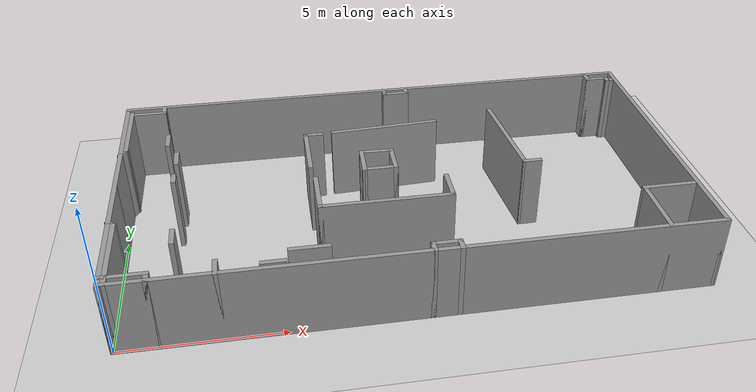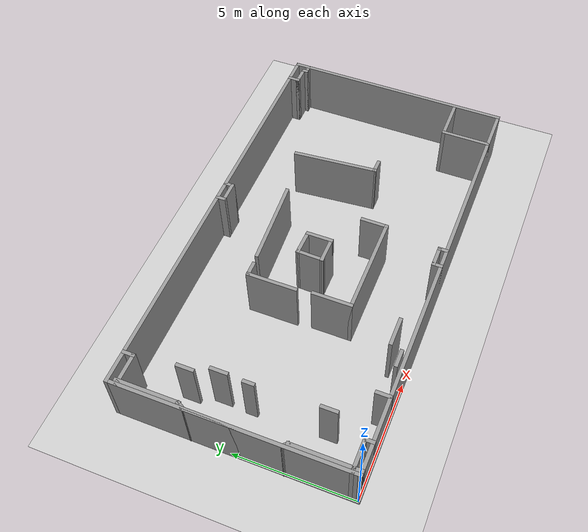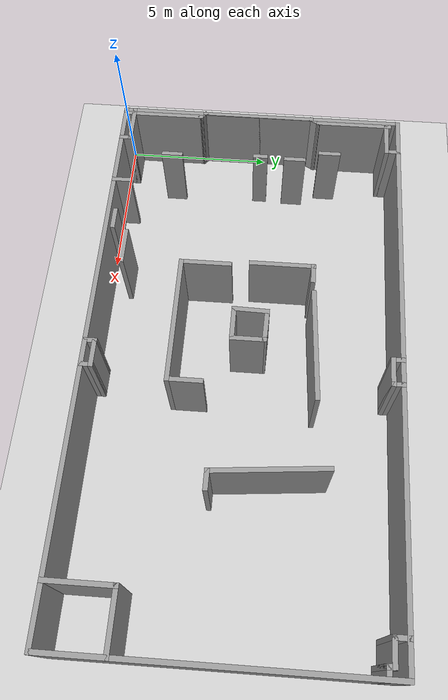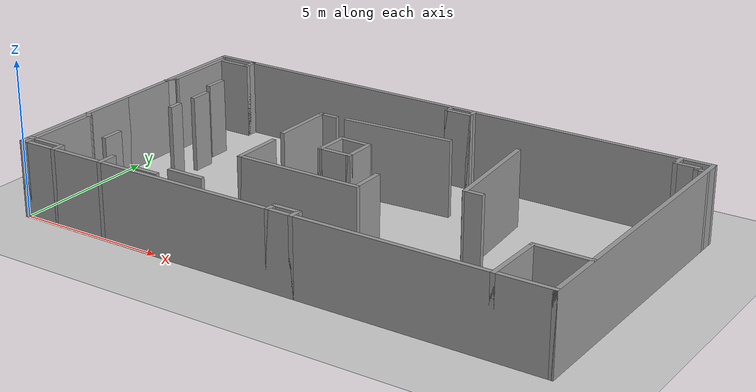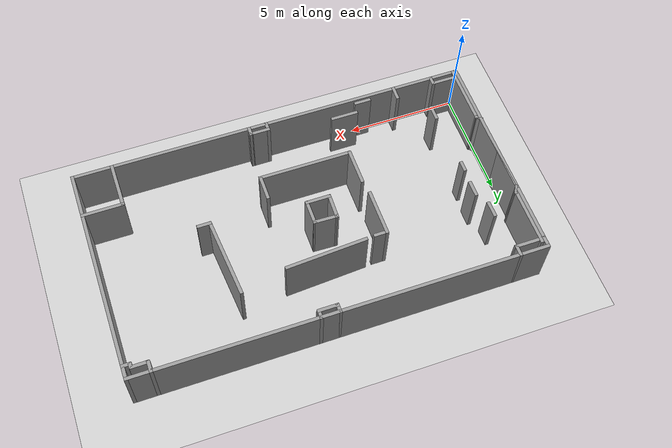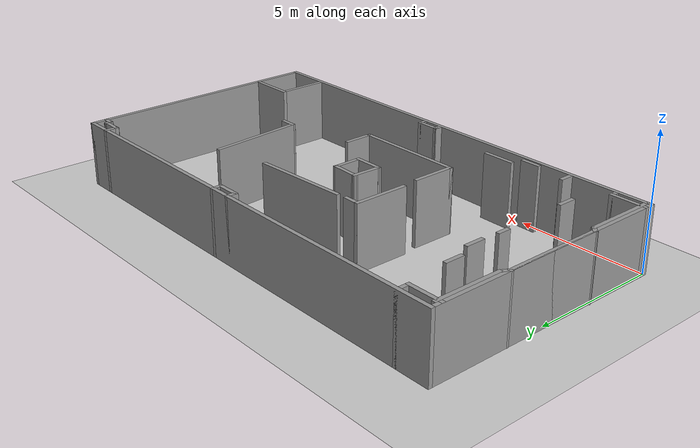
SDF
<sdf version="1.7">
 <world name="default">
  <light name="sun" type="directional">
   <pose>0 0 10 0 -0 0</pose>
   <diffuse>0.8 0.8 0.8 1</diffuse>
   <specular>0.2 0.2 0.2 1</specular>
   <attenuation>
    <range>1000</range>
    <constant>0.9</constant>
    <linear>0.01</linear>
    <quadratic>0.001</quadratic>
   </attenuation>
   <direction>-0.5 0.1 -0.9</direction>
   <spot><inner_angle>0</inner_angle><outer_angle>0</outer_angle><falloff>0</falloff></spot>
  </light>
  <model name="ground_plane">
   <static>1</static>
   <link name="link">
    <collision name="collision">
     <geometry><plane><normal>0 0 1</normal><size>100 100</size></plane></geometry>
     <surface>
      <contact><collide_bitmask>65535</collide_bitmask></contact>
      <friction><ode><mu>100</mu><mu2>50</mu2></ode></friction>
     </surface>
    </collision>
    <visual name="visual">
     <cast_shadows>0</cast_shadows>
     <geometry><plane><normal>0 0 1</normal><size>100 100</size></plane></geometry>
     <material>
      <script><uri>file://media/materials/scripts/gazebo.material</uri><name>Gazebo/Grey</name></script>
     </material>
    </visual>
   </link>
  </model>
  <gravity>0 0 -9.8</gravity>
  <magnetic_field>6e-06 2.3e-05 -4.2e-05</magnetic_field>
  <atmosphere type="adiabatic"/>
  <physics type="ode">
   <max_step_size>0.001</max_step_size>
   <real_time_factor>1</real_time_factor>
   <real_time_update_rate>1000</real_time_update_rate>
  </physics>
  <scene><ambient>0.4 0.4 0.4 1</ambient><background>0.7 0.7 0.7 1</background><shadows>1</shadows></scene>
  <spherical_coordinates>
   <surface_model>EARTH_WGS84</surface_model>
   <latitude_deg>0</latitude_deg>
   <longitude_deg>0</longitude_deg>
   <elevation>0</elevation>
   <heading_deg>0</heading_deg>
  </spherical_coordinates>
  <model name="testbed_3">
   <pose>8.98447 4.85 0 0 -0 0</pose>
   <link name="Wall_0">
    <collision name="Wall_0_Collision">
     <geometry><box><size>18.15 0.15 2.5</size></box></geometry>
     <pose>0 0 1.25 0 -0 0</pose>
    </collision>
    <visual name="Wall_0_Visual">
     <pose>0 0 1.25 0 -0 0</pose>
     <geometry><box><size>18.15 0.15 2.5</size></box></geometry>
     <material>
      <script><uri>file://media/materials/scripts/gazebo.material</uri><name>Gazebo/Grey</name></script>
      <ambient>1 1 1 1</ambient>
     </material>
     <meta><layer>0</layer></meta>
    </visual>
    <pose>0.015533 -4.85 0 0 -0 0</pose>
   </link>
   <link name="Wall_10">
    <collision name="Wall_10_Collision">
     <geometry><box><size>2.15 0.15 2.5</size></box></geometry>
     <pose>0 0 1.25 0 -0 0</pose>
    </collision>
    <visual name="Wall_10_Visual">
     <pose>0 0 1.25 0 -0 0</pose>
     <geometry><box><size>2.15 0.15 2.5</size></box></geometry>
     <material>
      <script><uri>file://media/materials/scripts/gazebo.material</uri><name>Gazebo/Grey</name></script>
      <ambient>1 1 1 1</ambient>
     </material>
     <meta><layer>0</layer></meta>
    </visual>
    <pose>7.26553 -3.85 0 0 -0 -1.5708</pose>
   </link>
   <link name="Wall_12">
    <collision name="Wall_12_Collision">
     <geometry><box><size>0.45 0.15 2.5</size></box></geometry>
     <pose>0 0 1.25 0 -0 0</pose>
    </collision>
    <visual name="Wall_12_Visual">
     <pose>0 0 1.25 0 -0 0</pose>
     <geometry><box><size>0.45 0.15 2.5</size></box></geometry>
     <material>
      <script><uri>file://media/materials/scripts/gazebo.material</uri><name>Gazebo/Grey</name></script>
      <ambient>1 1 1 1</ambient>
     </material>
     <meta><layer>0</layer></meta>
    </visual>
    <pose>0.215532 -4.7 0 0 -0 1.5708</pose>
   </link>
   <link name="Wall_13">
    <collision name="Wall_13_Collision">
     <geometry><box><size>0.95 0.15 2.5</size></box></geometry>
     <pose>0 0 1.25 0 -0 0</pose>
    </collision>
    <visual name="Wall_13_Visual">
     <pose>0 0 1.25 0 -0 0</pose>
     <geometry><box><size>0.95 0.15 2.5</size></box></geometry>
     <material>
      <script><uri>file://media/materials/scripts/gazebo.material</uri><name>Gazebo/Grey</name></script>
      <ambient>1 1 1 1</ambient>
     </material>
     <meta><layer>0</layer></meta>
    </visual>
    <pose>0.615533 -4.55 0 0 -0 0</pose>
   </link>
   <link name="Wall_14">
    <collision name="Wall_14_Collision">
     <geometry><box><size>0.45 0.15 2.5</size></box></geometry>
     <pose>0 0 1.25 0 -0 0</pose>
    </collision>
    <visual name="Wall_14_Visual">
     <pose>0 0 1.25 0 -0 0</pose>
     <geometry><box><size>0.45 0.15 2.5</size></box></geometry>
     <material>
      <script><uri>file://media/materials/scripts/gazebo.material</uri><name>Gazebo/Grey</name></script>
      <ambient>1 1 1 1</ambient>
     </material>
     <meta><layer>0</layer></meta>
    </visual>
    <pose>1.01553 -4.7 0 0 -0 -1.5708</pose>
   </link>
   <link name="Wall_16">
    <collision name="Wall_16_Collision">
     <geometry><box><size>0.95 0.15 2.5</size></box></geometry>
     <pose>0 0 1.25 0 -0 0</pose>
    </collision>
    <visual name="Wall_16_Visual">
     <pose>0 0 1.25 0 -0 0</pose>
     <geometry><box><size>0.95 0.15 2.5</size></box></geometry>
     <material>
      <script><uri>file://media/materials/scripts/gazebo.material</uri><name>Gazebo/Grey</name></script>
      <ambient>1 1 1 1</ambient>
     </material>
     <meta><layer>0</layer></meta>
    </visual>
    <pose>0.615533 4.55 0 0 -0 0</pose>
   </link>
   <link name="Wall_178">
    <collision name="Wall_178_Collision">
     <geometry><box><size>1.41 0.15 2.5</size></box></geometry>
     <pose>0 0 1.25 0 -0 0</pose>
    </collision>
    <visual name="Wall_178_Visual">
     <pose>0 0 1.25 0 -0 0</pose>
     <geometry><box><size>1.41 0.15 2.5</size></box></geometry>
     <material>
      <script><uri>file://media/materials/scripts/gazebo.material</uri><name>Gazebo/Grey</name></script>
      <ambient>1 1 1 1</ambient>
     </material>
     <meta><layer>0</layer></meta>
    </visual>
    <pose>-8.35447 -4.55 0 0 -0 0</pose>
   </link>
   <link name="Wall_179">
    <collision name="Wall_179_Collision">
     <geometry><box><size>0.45 0.15 2.5</size></box></geometry>
     <pose>0 0 1.25 0 -0 0</pose>
    </collision>
    <visual name="Wall_179_Visual">
     <pose>0 0 1.25 0 -0 0</pose>
     <geometry><box><size>0.45 0.15 2.5</size></box></geometry>
     <material>
      <script><uri>file://media/materials/scripts/gazebo.material</uri><name>Gazebo/Grey</name></script>
      <ambient>1 1 1 1</ambient>
     </material>
     <meta><layer>0</layer></meta>
    </visual>
    <pose>-7.72447 -4.7 0 0 -0 -1.5708</pose>
   </link>
   <link name="Wall_18">
    <collision name="Wall_18_Collision">
     <geometry><box><size>0.45 0.15 2.5</size></box></geometry>
     <pose>0 0 1.25 0 -0 0</pose>
    </collision>
    <visual name="Wall_18_Visual">
     <pose>0 0 1.25 0 -0 0</pose>
     <geometry><box><size>0.45 0.15 2.5</size></box></geometry>
     <material>
      <script><uri>file://media/materials/scripts/gazebo.material</uri><name>Gazebo/Grey</name></script>
      <ambient>1 1 1 1</ambient>
     </material>
     <meta><layer>0</layer></meta>
    </visual>
    <pose>0.215532 4.7 0 0 -0 -1.5708</pose>
   </link>
   <link name="Wall_181">
    <collision name="Wall_181_Collision">
     <geometry><box><size>2.65 0.15 2.5</size></box></geometry>
     <pose>0 0 1.25 0 -0 0</pose>
    </collision>
    <visual name="Wall_181_Visual">
     <pose>0 0 1.25 0 -0 0</pose>
     <geometry><box><size>2.65 0.15 2.5</size></box></geometry>
     <material>
      <script><uri>file://media/materials/scripts/gazebo.material</uri><name>Gazebo/Grey</name></script>
      <ambient>1 1 1 1</ambient>
     </material>
     <meta><layer>0</layer></meta>
    </visual>
    <pose>-8.83447 3.3 0 0 -0 -1.5708</pose>
   </link>
   <link name="Wall_182">
    <collision name="Wall_182_Collision">
     <geometry><box><size>0.458869 0.15 2.5</size></box></geometry>
     <pose>0 0 1.25 0 -0 0</pose>
    </collision>
    <visual name="Wall_182_Visual">
     <pose>0 0 1.25 0 -0 0</pose>
     <geometry><box><size>0.458869 0.15 2.5</size></box></geometry>
     <material>
      <script><uri>file://media/materials/scripts/gazebo.material</uri><name>Gazebo/Grey</name></script>
      <ambient>1 1 1 1</ambient>
     </material>
     <meta><layer>0</layer></meta>
    </visual>
    <pose>-8.90947 1.915 0 0 -0 -2.07789</pose>
   </link>
   <link name="Wall_183">
    <collision name="Wall_183_Collision">
     <geometry><box><size>3.93 0.15 2.5</size></box></geometry>
     <pose>0 0 1.25 0 -0 0</pose>
    </collision>
    <visual name="Wall_183_Visual">
     <pose>0 0 1.25 0 -0 0</pose>
     <geometry><box><size>3.93 0.15 2.5</size></box></geometry>
     <material>
      <script><uri>file://media/materials/scripts/gazebo.material</uri><name>Gazebo/Grey</name></script>
      <ambient>1 1 1 1</ambient>
     </material>
     <meta><layer>0</layer></meta>
    </visual>
    <pose>-8.98447 -0.11 0 0 -0 -1.5708</pose>
   </link>
   <link name="Wall_184">
    <collision name="Wall_184_Collision">
     <geometry><box><size>0.362132 0.15 2.5</size></box></geometry>
     <pose>0 0 1.25 0 -0 0</pose>
    </collision>
    <visual name="Wall_184_Visual">
     <pose>0 0 1.25 0 -0 0</pose>
     <geometry><box><size>0.362132 0.15 2.5</size></box></geometry>
     <material>
      <script><uri>file://media/materials/scripts/gazebo.material</uri><name>Gazebo/Grey</name></script>
      <ambient>1 1 1 1</ambient>
     </material>
     <meta><layer>0</layer></meta>
    </visual>
    <pose>-8.90947 -2.075 0 0 -0 -0.785398</pose>
   </link>
   <link name="Wall_185">
    <collision name="Wall_185_Collision">
     <geometry><box><size>2.85 0.15 2.5</size></box></geometry>
     <pose>0 0 1.25 0 -0 0</pose>
    </collision>
    <visual name="Wall_185_Visual">
     <pose>0 0 1.25 0 -0 0</pose>
     <geometry><box><size>2.85 0.15 2.5</size></box></geometry>
     <material>
      <script><uri>file://media/materials/scripts/gazebo.material</uri><name>Gazebo/Grey</name></script>
      <ambient>1 1 1 1</ambient>
     </material>
     <meta><layer>0</layer></meta>
    </visual>
    <pose>-8.83447 -3.5 0 0 -0 -1.5708</pose>
   </link>
   <link name="Wall_187">
    <collision name="Wall_187_Collision">
     <geometry><box><size>0.72 0.15 2.5</size></box></geometry>
     <pose>0 0 1.25 0 -0 0</pose>
    </collision>
    <visual name="Wall_187_Visual">
     <pose>0 0 1.25 0 -0 0</pose>
     <geometry><box><size>0.72 0.15 2.5</size></box></geometry>
     <material>
      <script><uri>file://media/materials/scripts/gazebo.material</uri><name>Gazebo/Grey</name></script>
      <ambient>1 1 1 1</ambient>
     </material>
     <meta><layer>0</layer></meta>
    </visual>
    <pose>-7.11447 -2.995 0 0 -0 1.5708</pose>
   </link>
   <link name="Wall_189">
    <collision name="Wall_189_Collision">
     <geometry><box><size>0.77 0.15 2.5</size></box></geometry>
     <pose>0 0 1.25 0 -0 0</pose>
    </collision>
    <visual name="Wall_189_Visual">
     <pose>0 0 1.25 0 -0 0</pose>
     <geometry><box><size>0.77 0.15 2.5</size></box></geometry>
     <material>
      <script><uri>file://media/materials/scripts/gazebo.material</uri><name>Gazebo/Grey</name></script>
      <ambient>1 1 1 1</ambient>
     </material>
     <meta><layer>0</layer></meta>
    </visual>
    <pose>-4.29447 -4.62 0 0 -0 3.14159</pose>
   </link>
   <link name="Wall_2">
    <collision name="Wall_2_Collision">
     <geometry><box><size>9.85 0.15 2.5</size></box></geometry>
     <pose>0 0 1.25 0 -0 0</pose>
    </collision>
    <visual name="Wall_2_Visual">
     <pose>0 0 1.25 0 -0 0</pose>
     <geometry><box><size>9.85 0.15 2.5</size></box></geometry>
     <material>
      <script><uri>file://media/materials/scripts/gazebo.material</uri><name>Gazebo/Grey</name></script>
      <ambient>1 1 1 1</ambient>
     </material>
     <meta><layer>0</layer></meta>
    </visual>
    <pose>9.01553 0 0 0 -0 1.5708</pose>
   </link>
   <link name="Wall_20">
    <collision name="Wall_20_Collision">
     <geometry><box><size>0.45 0.15 2.5</size></box></geometry>
     <pose>0 0 1.25 0 -0 0</pose>
    </collision>
    <visual name="Wall_20_Visual">
     <pose>0 0 1.25 0 -0 0</pose>
     <geometry><box><size>0.45 0.15 2.5</size></box></geometry>
     <material>
      <script><uri>file://media/materials/scripts/gazebo.material</uri><name>Gazebo/Grey</name></script>
      <ambient>1 1 1 1</ambient>
     </material>
     <meta><layer>0</layer></meta>
    </visual>
    <pose>1.01553 4.7 0 0 -0 1.5708</pose>
   </link>
   <link name="Wall_22">
    <collision name="Wall_22_Collision">
     <geometry><box><size>4.25 0.15 2.5</size></box></geometry>
     <pose>0 0 1.25 0 -0 0</pose>
    </collision>
    <visual name="Wall_22_Visual">
     <pose>0 0 1.25 0 -0 0</pose>
     <geometry><box><size>4.25 0.15 2.5</size></box></geometry>
     <material>
      <script><uri>file://media/materials/scripts/gazebo.material</uri><name>Gazebo/Grey</name></script>
      <ambient>1 1 1 1</ambient>
     </material>
     <meta><layer>0</layer></meta>
    </visual>
    <pose>-0.734467 -2.21 0 0 -0 0</pose>
   </link>
   <link name="Wall_29">
    <collision name="Wall_29_Collision">
     <geometry><box><size>1.12 0.15 2.5</size></box></geometry>
     <pose>0 0 1.25 0 -0 0</pose>
    </collision>
    <visual name="Wall_29_Visual">
     <pose>0 0 1.25 0 -0 0</pose>
     <geometry><box><size>1.12 0.15 2.5</size></box></geometry>
     <material>
      <script><uri>file://media/materials/scripts/gazebo.material</uri><name>Gazebo/Grey</name></script>
      <ambient>1 1 1 1</ambient>
     </material>
     <meta><layer>0</layer></meta>
    </visual>
    <pose>1.31553 -1.665 0 0 -0 1.5708</pose>
   </link>
   <link name="Wall_31">
    <collision name="Wall_31_Collision">
     <geometry><box><size>1.71 0.15 2.5</size></box></geometry>
     <pose>0 0 1.25 0 -0 0</pose>
    </collision>
    <visual name="Wall_31_Visual">
     <pose>0 0 1.25 0 -0 0</pose>
     <geometry><box><size>1.71 0.15 2.5</size></box></geometry>
     <material>
      <script><uri>file://media/materials/scripts/gazebo.material</uri><name>Gazebo/Grey</name></script>
      <ambient>1 1 1 1</ambient>
     </material>
     <meta><layer>0</layer></meta>
    </visual>
    <pose>-2.78447 -1.43 0 0 -0 1.5708</pose>
   </link>
   <link name="Wall_33">
    <collision name="Wall_33_Collision">
     <geometry><box><size>2.15 0.15 2.5</size></box></geometry>
     <pose>0 0 1.25 0 -0 0</pose>
    </collision>
    <visual name="Wall_33_Visual">
     <pose>0 0 1.25 0 -0 0</pose>
     <geometry><box><size>2.15 0.15 2.5</size></box></geometry>
     <material>
      <script><uri>file://media/materials/scripts/gazebo.material</uri><name>Gazebo/Grey</name></script>
      <ambient>1 1 1 1</ambient>
     </material>
     <meta><layer>0</layer></meta>
    </visual>
    <pose>-2.88447 1.05 0 0 -0 1.5708</pose>
   </link>
   <link name="Wall_34">
    <collision name="Wall_34_Collision">
     <geometry><box><size>0.67 0.15 2.5</size></box></geometry>
     <pose>0 0 1.25 0 -0 0</pose>
    </collision>
    <visual name="Wall_34_Visual">
     <pose>0 0 1.25 0 -0 0</pose>
     <geometry><box><size>0.67 0.15 2.5</size></box></geometry>
     <material>
      <script><uri>file://media/materials/scripts/gazebo.material</uri><name>Gazebo/Grey</name></script>
      <ambient>1 1 1 1</ambient>
     </material>
     <meta><layer>0</layer></meta>
    </visual>
    <pose>-2.62447 2.05 0 0 -0 0</pose>
   </link>
   <link name="Wall_36">
    <collision name="Wall_36_Collision">
     <geometry><box><size>3.70621 0.15 2.5</size></box></geometry>
     <pose>0 0 1.25 0 -0 0</pose>
    </collision>
    <visual name="Wall_36_Visual">
     <pose>0 0 1.25 0 -0 0</pose>
     <geometry><box><size>3.70621 0.15 2.5</size></box></geometry>
     <material>
      <script><uri>file://media/materials/scripts/gazebo.material</uri><name>Gazebo/Grey</name></script>
      <ambient>1 1 1 1</ambient>
     </material>
     <meta><layer>0</layer></meta>
    </visual>
    <pose>-0.159468 2.195 0 0 -0 0.059086</pose>
   </link>
   <link name="Wall_4">
    <collision name="Wall_4_Collision">
     <geometry><box><size>9.7 0.15 2.5</size></box></geometry>
     <pose>0 0 1.25 0 -0 0</pose>
    </collision>
    <visual name="Wall_4_Visual">
     <pose>0 0 1.25 0 -0 0</pose>
     <geometry><box><size>9.7 0.15 2.5</size></box></geometry>
     <material>
      <script><uri>file://media/materials/scripts/gazebo.material</uri><name>Gazebo/Grey</name></script>
      <ambient>1 1 1 1</ambient>
     </material>
     <meta><layer>0</layer></meta>
    </visual>
    <pose>-8.98447 -0.075 0 0 -0 1.5708</pose>
   </link>
   <link name="Wall_40">
    <collision name="Wall_40_Collision">
     <geometry><box><size>0.67 0.15 2.5</size></box></geometry>
     <pose>0 0 1.25 0 -0 0</pose>
    </collision>
    <visual name="Wall_40_Visual">
     <pose>0 0 1.25 0 -0 0</pose>
     <geometry><box><size>0.67 0.15 2.5</size></box></geometry>
     <material>
      <script><uri>file://media/materials/scripts/gazebo.material</uri><name>Gazebo/Grey</name></script>
      <ambient>1 1 1 1</ambient>
     </material>
     <meta><layer>0</layer></meta>
    </visual>
    <pose>-5.88447 -4.59 0 0 -0 -1.5708</pose>
   </link>
   <link name="Wall_42">
    <collision name="Wall_42_Collision">
     <geometry><box><size>0.75 0.15 2.5</size></box></geometry>
     <pose>0 0 1.25 0 -0 0</pose>
    </collision>
    <visual name="Wall_42_Visual">
     <pose>0 0 1.25 0 -0 0</pose>
     <geometry><box><size>0.75 0.15 2.5</size></box></geometry>
     <material>
      <script><uri>file://media/materials/scripts/gazebo.material</uri><name>Gazebo/Grey</name></script>
      <ambient>1 1 1 1</ambient>
     </material>
     <meta><layer>0</layer></meta>
    </visual>
    <pose>-7.49062 2.46929 0 0 -0 -1.5708</pose>
   </link>
   <link name="Wall_44">
    <collision name="Wall_44_Collision">
     <geometry><box><size>0.75 0.15 2.5</size></box></geometry>
     <pose>0 0 1.25 0 -0 0</pose>
    </collision>
    <visual name="Wall_44_Visual">
     <pose>0 0 1.25 0 -0 0</pose>
     <geometry><box><size>0.75 0.15 2.5</size></box></geometry>
     <material>
      <script><uri>file://media/materials/scripts/gazebo.material</uri><name>Gazebo/Grey</name></script>
      <ambient>1 1 1 1</ambient>
     </material>
     <meta><layer>0</layer></meta>
    </visual>
    <pose>-7.16125 1.26942 0 0 -0 -1.5708</pose>
   </link>
   <link name="Wall_46">
    <collision name="Wall_46_Collision">
     <geometry><box><size>0.5 0.15 2.5</size></box></geometry>
     <pose>0 0 1.25 0 -0 0</pose>
    </collision>
    <visual name="Wall_46_Visual">
     <pose>0 0 1.25 0 -0 0</pose>
     <geometry><box><size>0.5 0.15 2.5</size></box></geometry>
     <material>
      <script><uri>file://media/materials/scripts/gazebo.material</uri><name>Gazebo/Grey</name></script>
      <ambient>1 1 1 1</ambient>
     </material>
     <meta><layer>0</layer></meta>
    </visual>
    <pose>-7.2083 0.076911 0 0 -0 -1.5708</pose>
   </link>
   <link name="Wall_48">
    <collision name="Wall_48_Collision">
     <geometry><box><size>3.66283 0.15 2.5</size></box></geometry>
     <pose>0 0 1.25 0 -0 0</pose>
    </collision>
    <visual name="Wall_48_Visual">
     <pose>0 0 1.25 0 -0 0</pose>
     <geometry><box><size>3.66283 0.15 2.5</size></box></geometry>
     <material>
      <script><uri>file://media/materials/scripts/gazebo.material</uri><name>Gazebo/Grey</name></script>
      <ambient>1 1 1 1</ambient>
     </material>
     <meta><layer>0</layer></meta>
    </visual>
    <pose>3.86553 1 0 0 -0 -1.48529</pose>
   </link>
   <link name="Wall_49">
    <collision name="Wall_49_Collision">
     <geometry><box><size>0.65 0.15 2.5</size></box></geometry>
     <pose>0 0 1.25 0 -0 0</pose>
    </collision>
    <visual name="Wall_49_Visual">
     <pose>0 0 1.25 0 -0 0</pose>
     <geometry><box><size>0.65 0.15 2.5</size></box></geometry>
     <material>
      <script><uri>file://media/materials/scripts/gazebo.material</uri><name>Gazebo/Grey</name></script>
      <ambient>1 1 1 1</ambient>
     </material>
     <meta><layer>0</layer></meta>
    </visual>
    <pose>4.26553 -0.75 0 0 -0 0</pose>
   </link>
   <link name="Wall_51">
    <collision name="Wall_51_Collision">
     <geometry><box><size>0.55 0.15 2.5</size></box></geometry>
     <pose>0 0 1.25 0 -0 0</pose>
    </collision>
    <visual name="Wall_51_Visual">
     <pose>0 0 1.25 0 -0 0</pose>
     <geometry><box><size>0.55 0.15 2.5</size></box></geometry>
     <material>
      <script><uri>file://media/materials/scripts/gazebo.material</uri><name>Gazebo/Grey</name></script>
      <ambient>1 1 1 1</ambient>
     </material>
     <meta><layer>0</layer></meta>
    </visual>
    <pose>8.01553 4.65 0 0 -0 -1.5708</pose>
   </link>
   <link name="Wall_52">
    <collision name="Wall_52_Collision">
     <geometry><box><size>0.85 0.15 2.5</size></box></geometry>
     <pose>0 0 1.25 0 -0 0</pose>
    </collision>
    <visual name="Wall_52_Visual">
     <pose>0 0 1.25 0 -0 0</pose>
     <geometry><box><size>0.85 0.15 2.5</size></box></geometry>
     <material>
      <script><uri>file://media/materials/scripts/gazebo.material</uri><name>Gazebo/Grey</name></script>
      <ambient>1 1 1 1</ambient>
     </material>
     <meta><layer>0</layer></meta>
    </visual>
    <pose>8.36553 4.45 0 0 -0 0</pose>
   </link>
   <link name="Wall_53">
    <collision name="Wall_53_Collision">
     <geometry><box><size>0.3 0.15 2.5</size></box></geometry>
     <pose>0 0 1.25 0 -0 0</pose>
    </collision>
    <visual name="Wall_53_Visual">
     <pose>0 0 1.25 0 -0 0</pose>
     <geometry><box><size>0.3 0.15 2.5</size></box></geometry>
     <material>
      <script><uri>file://media/materials/scripts/gazebo.material</uri><name>Gazebo/Grey</name></script>
      <ambient>1 1 1 1</ambient>
     </material>
     <meta><layer>0</layer></meta>
    </visual>
    <pose>8.71553 4.375 0 0 -0 -1.5708</pose>
   </link>
   <link name="Wall_54">
    <collision name="Wall_54_Collision">
     <geometry><box><size>0.45 0.15 2.5</size></box></geometry>
     <pose>0 0 1.25 0 -0 0</pose>
    </collision>
    <visual name="Wall_54_Visual">
     <pose>0 0 1.25 0 -0 0</pose>
     <geometry><box><size>0.45 0.15 2.5</size></box></geometry>
     <material>
      <script><uri>file://media/materials/scripts/gazebo.material</uri><name>Gazebo/Grey</name></script>
      <ambient>1 1 1 1</ambient>
     </material>
     <meta><layer>0</layer></meta>
    </visual>
    <pose>8.86553 4.3 0 0 -0 0</pose>
   </link>
   <link name="Wall_56">
    <collision name="Wall_56_Collision">
     <geometry><box><size>1.19043 0.15 2.5</size></box></geometry>
     <pose>0 0 1.25 0 -0 0</pose>
    </collision>
    <visual name="Wall_56_Visual">
     <pose>0 0 1.25 0 -0 0</pose>
     <geometry><box><size>1.19043 0.15 2.5</size></box></geometry>
     <material>
      <script><uri>file://media/materials/scripts/gazebo.material</uri><name>Gazebo/Grey</name></script>
      <ambient>1 1 1 1</ambient>
     </material>
     <meta><layer>0</layer></meta>
    </visual>
    <pose>-1.16947 0.14 0 0 -0 -1.59963</pose>
   </link>
   <link name="Wall_57">
    <collision name="Wall_57_Collision">
     <geometry><box><size>1.16 0.15 2.5</size></box></geometry>
     <pose>0 0 1.25 0 -0 0</pose>
    </collision>
    <visual name="Wall_57_Visual">
     <pose>0 0 1.25 0 -0 0</pose>
     <geometry><box><size>1.16 0.15 2.5</size></box></geometry>
     <material>
      <script><uri>file://media/materials/scripts/gazebo.material</uri><name>Gazebo/Grey</name></script>
      <ambient>1 1 1 1</ambient>
     </material>
     <meta><layer>0</layer></meta>
    </visual>
    <pose>-0.679467 -0.38 0 0 -0 0</pose>
   </link>
   <link name="Wall_58">
    <collision name="Wall_58_Collision">
     <geometry><box><size>1.16 0.15 2.5</size></box></geometry>
     <pose>0 0 1.25 0 -0 0</pose>
    </collision>
    <visual name="Wall_58_Visual">
     <pose>0 0 1.25 0 -0 0</pose>
     <geometry><box><size>1.16 0.15 2.5</size></box></geometry>
     <material>
      <script><uri>file://media/materials/scripts/gazebo.material</uri><name>Gazebo/Grey</name></script>
      <ambient>1 1 1 1</ambient>
     </material>
     <meta><layer>0</layer></meta>
    </visual>
    <pose>-0.174467 0.125 0 0 -0 1.5708</pose>
   </link>
   <link name="Wall_59">
    <collision name="Wall_59_Collision">
     <geometry><box><size>1.13046 0.15 2.5</size></box></geometry>
     <pose>0 0 1.25 0 -0 0</pose>
    </collision>
    <visual name="Wall_59_Visual">
     <pose>0 0 1.25 0 -0 0</pose>
     <geometry><box><size>1.13046 0.15 2.5</size></box></geometry>
     <material>
      <script><uri>file://media/materials/scripts/gazebo.material</uri><name>Gazebo/Grey</name></script>
      <ambient>1 1 1 1</ambient>
     </material>
     <meta><layer>0</layer></meta>
    </visual>
    <pose>-0.664468 0.645 0 0 -0 3.11099</pose>
   </link>
   <link name="Wall_6">
    <collision name="Wall_6_Collision">
     <geometry><box><size>18.15 0.15 2.5</size></box></geometry>
     <pose>0 0 1.25 0 -0 0</pose>
    </collision>
    <visual name="Wall_6_Visual">
     <pose>0 0 1.25 0 -0 0</pose>
     <geometry><box><size>18.15 0.15 2.5</size></box></geometry>
     <material>
      <script><uri>file://media/materials/scripts/gazebo.material</uri><name>Gazebo/Grey</name></script>
      <ambient>1 1 1 1</ambient>
     </material>
     <meta><layer>0</layer></meta>
    </visual>
    <pose>0.015533 4.85 0 0 -0 0</pose>
   </link>
   <link name="Wall_61">
    <collision name="Wall_61_Collision">
     <geometry><box><size>1.25 0.15 2.5</size></box></geometry>
     <pose>0 0 1.25 0 -0 0</pose>
    </collision>
    <visual name="Wall_61_Visual">
     <pose>0 0 1.25 0 -0 0</pose>
     <geometry><box><size>1.25 0.15 2.5</size></box></geometry>
     <material>
      <script><uri>file://media/materials/scripts/gazebo.material</uri><name>Gazebo/Grey</name></script>
      <ambient>1 1 1 1</ambient>
     </material>
     <meta><layer>0</layer></meta>
    </visual>
    <pose>-3.25447 -4.15 0 0 -0 0</pose>
   </link>
   <link name="Wall_64">
    <collision name="Wall_64_Collision">
     <geometry><box><size>0.55 0.15 2.5</size></box></geometry>
     <pose>0 0 1.25 0 -0 0</pose>
    </collision>
    <visual name="Wall_64_Visual">
     <pose>0 0 1.25 0 -0 0</pose>
     <geometry><box><size>0.55 0.15 2.5</size></box></geometry>
     <material>
      <script><uri>file://media/materials/scripts/gazebo.material</uri><name>Gazebo/Grey</name></script>
      <ambient>1 1 1 1</ambient>
     </material>
     <meta><layer>0</layer></meta>
    </visual>
    <pose>-7.72447 4.65 0 0 -0 -1.5708</pose>
   </link>
   <link name="Wall_65">
    <collision name="Wall_65_Collision">
     <geometry><box><size>1.41 0.15 2.5</size></box></geometry>
     <pose>0 0 1.25 0 -0 0</pose>
    </collision>
    <visual name="Wall_65_Visual">
     <pose>0 0 1.25 0 -0 0</pose>
     <geometry><box><size>1.41 0.15 2.5</size></box></geometry>
     <material>
      <script><uri>file://media/materials/scripts/gazebo.material</uri><name>Gazebo/Grey</name></script>
      <ambient>1 1 1 1</ambient>
     </material>
     <meta><layer>0</layer></meta>
    </visual>
    <pose>-8.35447 4.45 0 0 -0 3.14159</pose>
   </link>
   <link name="Wall_8">
    <collision name="Wall_8_Collision">
     <geometry><box><size>1.9 0.15 2.5</size></box></geometry>
     <pose>0 0 1.25 0 -0 0</pose>
    </collision>
    <visual name="Wall_8_Visual">
     <pose>0 0 1.25 0 -0 0</pose>
     <geometry><box><size>1.9 0.15 2.5</size></box></geometry>
     <material>
      <script><uri>file://media/materials/scripts/gazebo.material</uri><name>Gazebo/Grey</name></script>
      <ambient>1 1 1 1</ambient>
     </material>
     <meta><layer>0</layer></meta>
    </visual>
    <pose>8.14053 -2.85 0 0 -0 3.14159</pose>
   </link>
   <static>1</static>
  </model>
 </world>
</sdf>
